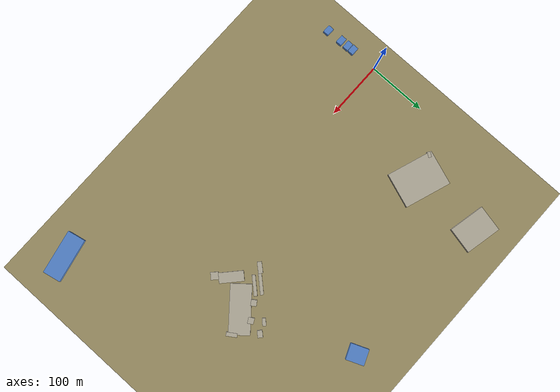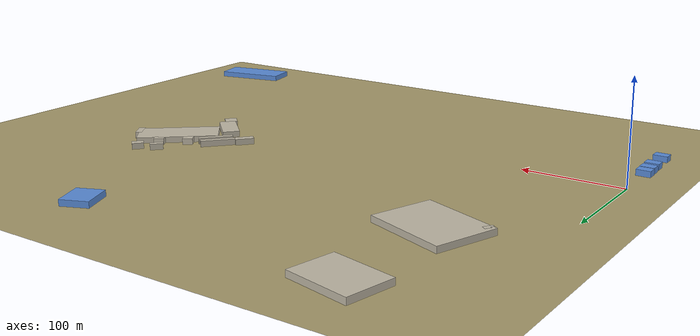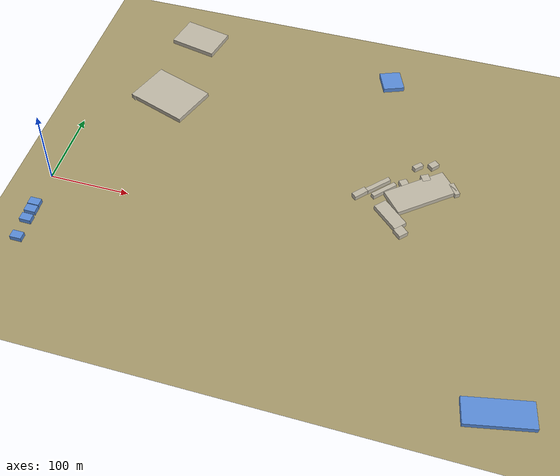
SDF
<sdf version="1.10">
 <world name="novation_city">
  <model name="ground_plane">
   <static>true</static>
   <link name="link">
    <collision name="collision">
     <geometry><plane><normal>0 0 1</normal><size>2000 2000</size></plane></geometry>
     <surface><friction><ode><mu>1.0</mu><mu2>1.0</mu2></ode></friction></surface>
    </collision>
    <visual name="visual">
     <geometry><plane><normal>0 0 1</normal><size>2000 2000</size></plane></geometry>
     <material><ambient>0.55 0.50 0.35 1</ambient><diffuse>0.65 0.60 0.42 1</diffuse></material>
    </visual>
   </link>
  </model>
  <model name="bld_شل_36555">
   <static>true</static>
   <pose>365.558 281.650 3.000 0 0 1.9603</pose>
   <link name="link">
    <collision name="c"><geometry><box><size>30.42 27.06 6.00</size></box></geometry></collision>
    <visual name="v">
     <geometry><box><size>30.42 27.06 6.00</size></box></geometry>
     <material><ambient>0.35 0.55 0.85 1</ambient><diffuse>0.35 0.55 0.85 1</diffuse></material>
    </visual>
   </link>
  </model>
  <model name="bld_Technopole_Sousse_9265">
   <static>true</static>
   <pose>92.655 293.082 3.000 0 0 -0.2131</pose>
   <link name="link">
    <collision name="c"><geometry><box><size>61.99 44.84 6.00</size></box></geometry></collision>
    <visual name="v">
     <geometry><box><size>61.99 44.84 6.00</size></box></geometry>
     <material><ambient>0.75 0.72 0.65 1</ambient><diffuse>0.75 0.72 0.65 1</diffuse></material>
    </visual>
   </link>
  </model>
  <model name="bld_Ecole_Supérieure_Privée_d_Ingénierie_et__56197">
   <static>true</static>
   <pose>561.976 -166.836 3.000 0 0 -2.9378</pose>
   <link name="link">
    <collision name="c"><geometry><box><size>75.50 30.70 6.00</size></box></geometry></collision>
    <visual name="v">
     <geometry><box><size>75.50 30.70 6.00</size></box></geometry>
     <material><ambient>0.35 0.55 0.85 1</ambient><diffuse>0.35 0.55 0.85 1</diffuse></material>
    </visual>
   </link>
  </model>
  <model name="bld_bld_1329657094_9077">
   <static>true</static>
   <pose>90.770 173.492 3.000 0 0 -0.3399</pose>
   <link name="link">
    <collision name="c"><geometry><box><size>80.45 60.18 6.00</size></box></geometry></collision>
    <visual name="v">
     <geometry><box><size>80.45 60.18 6.00</size></box></geometry>
     <material><ambient>0.75 0.72 0.65 1</ambient><diffuse>0.75 0.72 0.65 1</diffuse></material>
    </visual>
   </link>
  </model>
  <model name="bld_bld_1329657098_4936">
   <static>true</static>
   <pose>49.363 159.966 3.000 0 0 0.9523</pose>
   <link name="link">
    <collision name="c"><geometry><box><size>9.38 5.15 6.00</size></box></geometry></collision>
    <visual name="v">
     <geometry><box><size>9.38 5.15 6.00</size></box></geometry>
     <material><ambient>0.75 0.72 0.65 1</ambient><diffuse>0.75 0.72 0.65 1</diffuse></material>
    </visual>
   </link>
  </model>
  <model name="bld_bld_1329661322_43662">
   <static>true</static>
   <pose>436.622 97.862 3.000 0 0 0.6939</pose>
   <link name="link">
    <collision name="c"><geometry><box><size>80.42 34.95 6.00</size></box></geometry></collision>
    <visual name="v">
     <geometry><box><size>80.42 34.95 6.00</size></box></geometry>
     <material><ambient>0.75 0.72 0.65 1</ambient><diffuse>0.75 0.72 0.65 1</diffuse></material>
    </visual>
   </link>
  </model>
  <model name="bld_bld_1329661323_47470">
   <static>true</static>
   <pose>474.707 114.191 3.000 0 0 -0.9835</pose>
   <link name="link">
    <collision name="c"><geometry><box><size>17.67 6.36 6.00</size></box></geometry></collision>
    <visual name="v">
     <geometry><box><size>17.67 6.36 6.00</size></box></geometry>
     <material><ambient>0.75 0.72 0.65 1</ambient><diffuse>0.75 0.72 0.65 1</diffuse></material>
    </visual>
   </link>
  </model>
  <model name="bld_bld_1329661324_40838">
   <static>true</static>
   <pose>408.384 53.449 3.000 0 0 -0.7421</pose>
   <link name="link">
    <collision name="c"><geometry><box><size>40.59 16.90 6.00</size></box></geometry></collision>
    <visual name="v">
     <geometry><box><size>40.59 16.90 6.00</size></box></geometry>
     <material><ambient>0.75 0.72 0.65 1</ambient><diffuse>0.75 0.72 0.65 1</diffuse></material>
    </visual>
   </link>
  </model>
  <model name="bld_bld_1329661325_42494">
   <static>true</static>
   <pose>424.946 32.346 3.000 0 0 -0.7489</pose>
   <link name="link">
    <collision name="c"><geometry><box><size>12.37 12.14 6.00</size></box></geometry></collision>
    <visual name="v">
     <geometry><box><size>12.37 12.14 6.00</size></box></geometry>
     <material><ambient>0.75 0.72 0.65 1</ambient><diffuse>0.75 0.72 0.65 1</diffuse></material>
    </visual>
   </link>
  </model>
  <model name="bld_bld_1329661326_36703">
   <static>true</static>
   <pose>367.033 77.352 3.000 0 0 0.8544</pose>
   <link name="link">
    <collision name="c"><geometry><box><size>18.59 7.56 6.00</size></box></geometry></collision>
    <visual name="v">
     <geometry><box><size>18.59 7.56 6.00</size></box></geometry>
     <material><ambient>0.75 0.72 0.65 1</ambient><diffuse>0.75 0.72 0.65 1</diffuse></material>
    </visual>
   </link>
  </model>
  <model name="bld_bld_1329661327_44419">
   <static>true</static>
   <pose>444.191 146.703 3.000 0 0 0.8496</pose>
   <link name="link">
    <collision name="c"><geometry><box><size>11.27 8.26 6.00</size></box></geometry></collision>
    <visual name="v">
     <geometry><box><size>11.27 8.26 6.00</size></box></geometry>
     <material><ambient>0.75 0.72 0.65 1</ambient><diffuse>0.75 0.72 0.65 1</diffuse></material>
    </visual>
   </link>
  </model>
  <model name="bld_bld_1329661328_42610">
   <static>true</static>
   <pose>426.110 139.148 3.000 0 0 -2.3314</pose>
   <link name="link">
    <collision name="c"><geometry><box><size>12.75 5.79 6.00</size></box></geometry></collision>
    <visual name="v">
     <geometry><box><size>12.75 5.79 6.00</size></box></geometry>
     <material><ambient>0.75 0.72 0.65 1</ambient><diffuse>0.75 0.72 0.65 1</diffuse></material>
    </visual>
   </link>
  </model>
  <model name="bld_bld_1329661329_41477">
   <static>true</static>
   <pose>414.775 107.070 3.000 0 0 0.5929</pose>
   <link name="link">
    <collision name="c"><geometry><box><size>10.01 9.53 6.00</size></box></geometry></collision>
    <visual name="v">
     <geometry><box><size>10.01 9.53 6.00</size></box></geometry>
     <material><ambient>0.75 0.72 0.65 1</ambient><diffuse>0.75 0.72 0.65 1</diffuse></material>
    </visual>
   </link>
  </model>
  <model name="bld_bld_1329661330_43839">
   <static>true</static>
   <pose>438.391 122.315 3.000 0 0 0.4968</pose>
   <link name="link">
    <collision name="c"><geometry><box><size>10.04 9.82 6.00</size></box></geometry></collision>
    <visual name="v">
     <geometry><box><size>10.04 9.82 6.00</size></box></geometry>
     <material><ambient>0.75 0.72 0.65 1</ambient><diffuse>0.75 0.72 0.65 1</diffuse></material>
    </visual>
   </link>
  </model>
  <model name="bld_bld_1329663014_38541">
   <static>true</static>
   <pose>385.420 95.980 3.000 0 0 -2.3065</pose>
   <link name="link">
    <collision name="c"><geometry><box><size>33.77 5.49 6.00</size></box></geometry></collision>
    <visual name="v">
     <geometry><box><size>33.77 5.49 6.00</size></box></geometry>
     <material><ambient>0.75 0.72 0.65 1</ambient><diffuse>0.75 0.72 0.65 1</diffuse></material>
    </visual>
   </link>
  </model>
  <model name="bld_bld_1329663015_39368">
   <static>true</static>
   <pose>393.688 89.863 3.000 0 0 -2.3063</pose>
   <link name="link">
    <collision name="c"><geometry><box><size>33.77 5.49 6.00</size></box></geometry></collision>
    <visual name="v">
     <geometry><box><size>33.77 5.49 6.00</size></box></geometry>
     <material><ambient>0.75 0.72 0.65 1</ambient><diffuse>0.75 0.72 0.65 1</diffuse></material>
    </visual>
   </link>
  </model>
  <model name="bld_NOVATION_MECHATRONIC_CITY_261">
   <static>true</static>
   <pose>2.618 -98.217 3.000 0 0 0.0000</pose>
   <link name="link">
    <collision name="c"><geometry><box><size>14.00 10.00 6.00</size></box></geometry></collision>
    <visual name="v">
     <geometry><box><size>14.00 10.00 6.00</size></box></geometry>
     <material><ambient>0.35 0.55 0.85 1</ambient><diffuse>0.35 0.55 0.85 1</diffuse></material>
    </visual>
   </link>
  </model>
  <model name="bld_Proxym_IT_147">
   <static>true</static>
   <pose>1.471 -71.111 3.000 0 0 0.0000</pose>
   <link name="link">
    <collision name="c"><geometry><box><size>14.00 10.00 6.00</size></box></geometry></collision>
    <visual name="v">
     <geometry><box><size>14.00 10.00 6.00</size></box></geometry>
     <material><ambient>0.35 0.55 0.85 1</ambient><diffuse>0.35 0.55 0.85 1</diffuse></material>
    </visual>
   </link>
  </model>
  <model name="bld_Positrone_Tunisia_89">
   <static>true</static>
   <pose>0.894 -57.318 3.000 0 0 0.0000</pose>
   <link name="link">
    <collision name="c"><geometry><box><size>14.00 10.00 6.00</size></box></geometry></collision>
    <visual name="v">
     <geometry><box><size>14.00 10.00 6.00</size></box></geometry>
     <material><ambient>0.35 0.55 0.85 1</ambient><diffuse>0.35 0.55 0.85 1</diffuse></material>
    </visual>
   </link>
  </model>
  <model name="bld_Dejamobile_sousse_43">
   <static>true</static>
   <pose>0.433 -46.365 3.000 0 0 0.0000</pose>
   <link name="link">
    <collision name="c"><geometry><box><size>14.00 10.00 6.00</size></box></geometry></collision>
    <visual name="v">
     <geometry><box><size>14.00 10.00 6.00</size></box></geometry>
     <material><ambient>0.35 0.55 0.85 1</ambient><diffuse>0.35 0.55 0.85 1</diffuse></material>
    </visual>
   </link>
  </model>
 </world>
</sdf>
